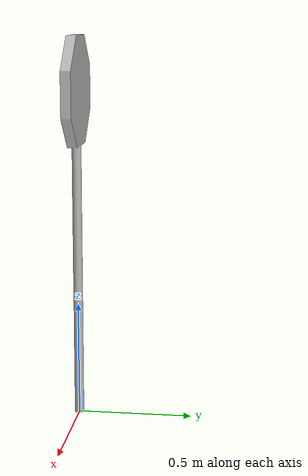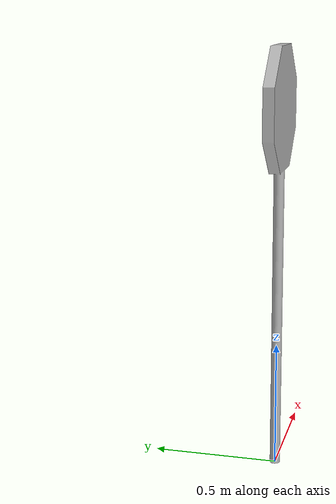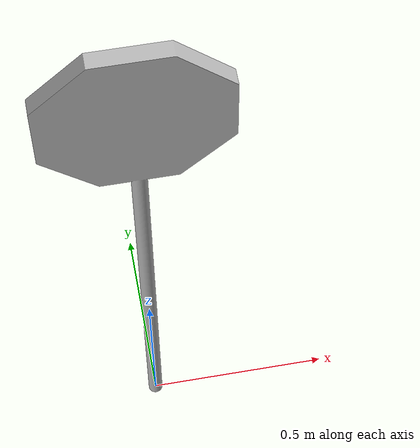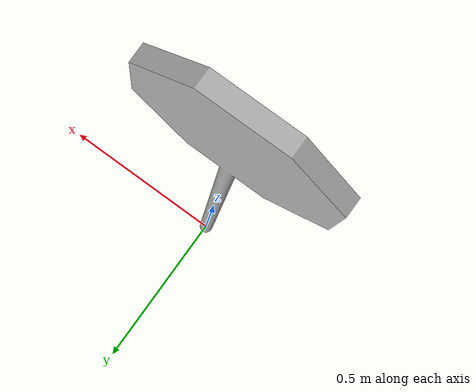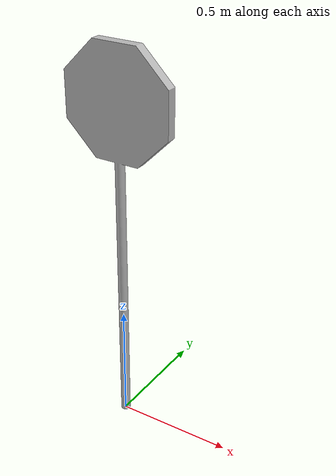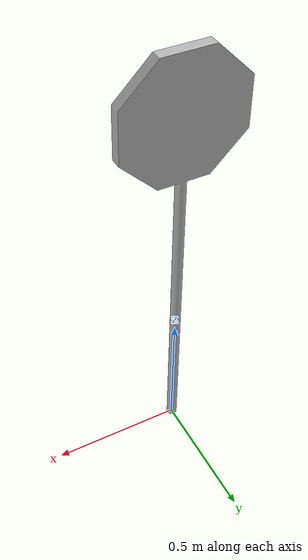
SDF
<?xml version='1.0'?>
<sdf version='1.4'>
  <model name='stop_sign'>
    <static>true</static>
    <link name="stop_sign">
      <visual name="visual">
            <geometry>
                <mesh>
                    <uri>model://stop_sign/materials/meshes/stop_sign.dae</uri>
                    <scale>0.5 0.5 0.5</scale>
                </mesh>
            </geometry>
        </visual>
        <collision name="collision">
            <geometry>
                <mesh>
                    <uri>model://stop_sign/materials/meshes/stop_sign.dae</uri>
                    <scale>0.5 0.5 0.5</scale>
                </mesh>
            </geometry>
        </collision>
    </link>
  </model>
</sdf>
